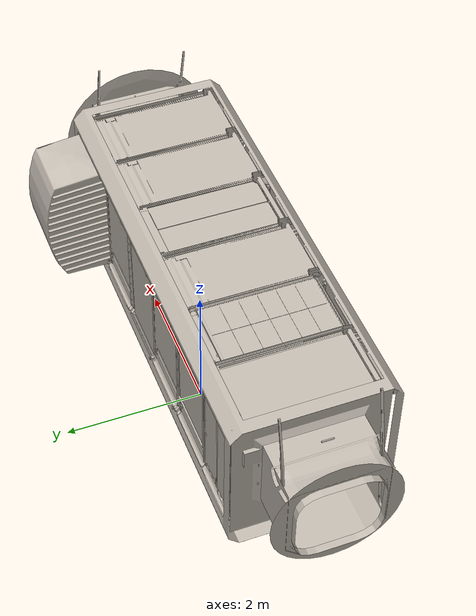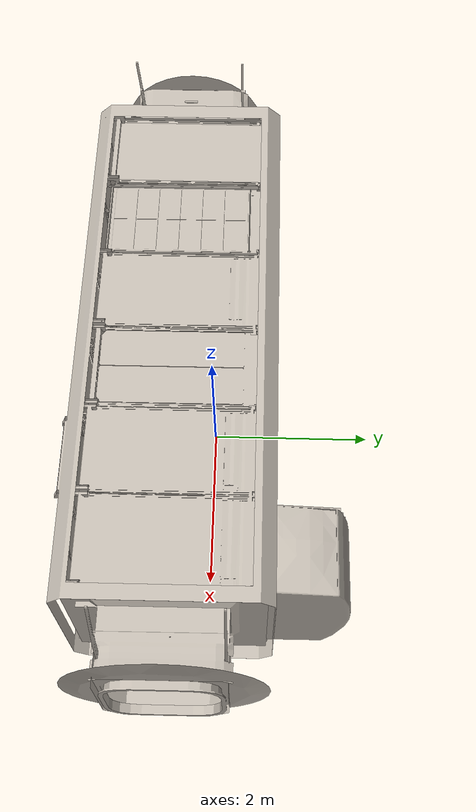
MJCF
<mujoco model="iss_us_lab">
  <compiler assetdir="../.." />
  <asset>
    <mesh name="part_0" file="space/iss_us_lab/part_0.obj" />
    <material name="material_0" rgba="1 1 1 1" shininess="0.2" texture="texture_0" />
    <texture name="texture_0" type="2d" file="space/iss_us_lab/diffuse_0.png" />
    <mesh name="part_1" file="space/iss_us_lab/part_1.obj" />
    <material name="material_1" rgba="1 1 1 1" shininess="0.2" texture="texture_1" />
    <texture name="texture_1" type="2d" file="space/iss_us_lab/diffuse_1.png" />
    <mesh name="part_2" file="space/iss_us_lab/part_2.obj" />
    <material name="material_2" rgba="1 1 1 1" shininess="0.2" texture="texture_1" />
    <mesh name="part_3" file="space/iss_us_lab/part_3.obj" />
    <material name="material_3" rgba="1 1 1 1" shininess="0.2" texture="texture_2" />
    <texture name="texture_2" type="2d" file="space/iss_us_lab/diffuse_2.png" />
    <mesh name="part_4" file="space/iss_us_lab/part_4.obj" />
    <material name="material_4" rgba="1 1 1 1" shininess="0.2" texture="texture_3" />
    <texture name="texture_3" type="2d" file="space/iss_us_lab/diffuse_3.png" />
    <mesh name="part_5" file="space/iss_us_lab/part_5.obj" />
    <material name="material_5" rgba="1 1 1 1" shininess="0.2" texture="texture_1" />
    <mesh name="part_6" file="space/iss_us_lab/part_6.obj" />
    <material name="material_6" rgba="1 1 1 1" shininess="0.2" texture="texture_4" />
    <texture name="texture_4" type="2d" file="space/iss_us_lab/diffuse_4.png" />
    <mesh name="part_7" file="space/iss_us_lab/part_7.obj" />
    <material name="material_7" rgba="1 1 1 1" shininess="0.2" texture="texture_5" />
    <texture name="texture_5" type="2d" file="space/iss_us_lab/diffuse_5.png" />
    <mesh name="part_8" file="space/iss_us_lab/part_8.obj" />
    <material name="material_8" rgba="1 1 1 1" shininess="0.2" texture="texture_6" />
    <texture name="texture_6" type="2d" file="space/iss_us_lab/diffuse_6.png" />
  </asset>
  <worldbody>
    <body name="asset_root">
      <inertial pos="0 0 1.7540218234062195" mass="0.1" diaginertia="0.183316998 0.601083658 0.579294486" />
      <geom name="part_0" type="mesh" mesh="part_0" material="material_0" contype="0" conaffinity="0" mass="0" />
      <geom name="part_1" type="mesh" mesh="part_1" material="material_1" contype="0" conaffinity="0" mass="0" />
      <geom name="part_2" type="mesh" mesh="part_2" material="material_2" contype="0" conaffinity="0" mass="0" />
      <geom name="part_3" type="mesh" mesh="part_3" material="material_3" contype="0" conaffinity="0" mass="0" />
      <geom name="part_4" type="mesh" mesh="part_4" material="material_4" contype="0" conaffinity="0" mass="0" />
      <geom name="part_5" type="mesh" mesh="part_5" material="material_5" contype="0" conaffinity="0" mass="0" />
      <geom name="part_6" type="mesh" mesh="part_6" material="material_6" contype="0" conaffinity="0" mass="0" />
      <geom name="part_7" type="mesh" mesh="part_7" material="material_7" contype="0" conaffinity="0" mass="0" />
      <geom name="part_8" type="mesh" mesh="part_8" material="material_8" contype="0" conaffinity="0" mass="0" />
    </body>
  </worldbody>
</mujoco>
